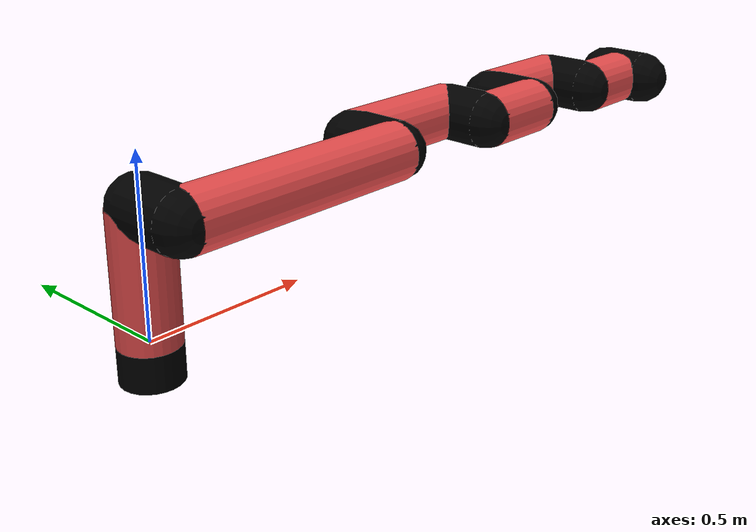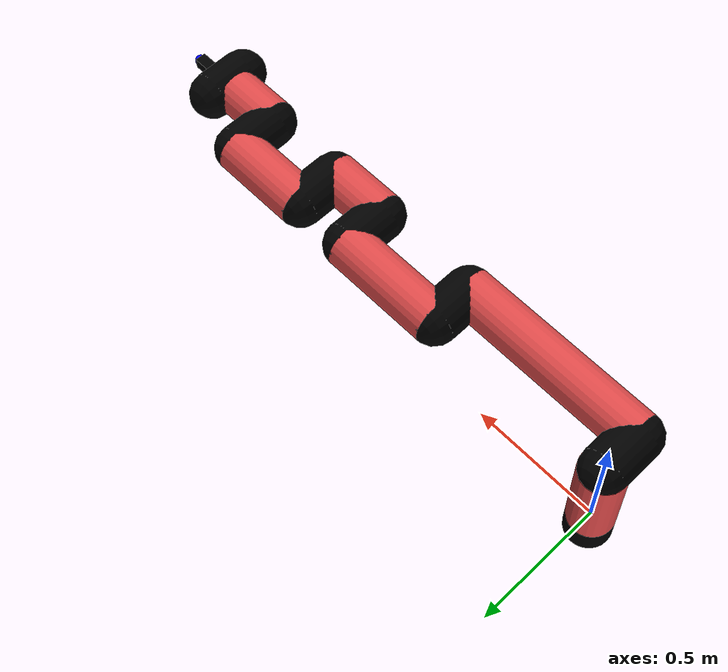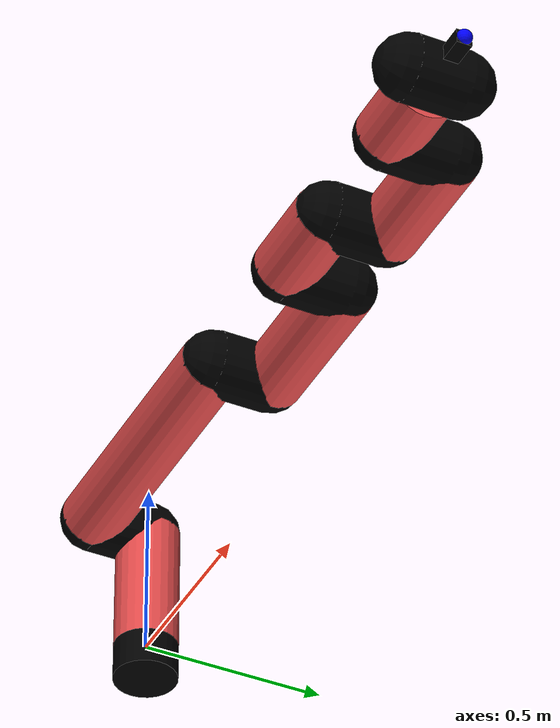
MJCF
<mujoco model="manipulator">
		<compiler angle="degree" coordinate="local" inertiafromgeom="auto" meshdir="meshes/"/>
		<option gravity="0 0 0" integrator="RK4" iterations="30" timestep="0.01"/>

		<default>
		<joint armature="1" limited="true" stiffness="10" damping="15" frictionloss="5.0"/>
		<geom conaffinity="1" condim="3" contype="1" friction=".5 .1 .1" margin="0.002"/>
		<motor ctrllimited="true"/>
		<position ctrllimited="true"/>
		</default>

		<asset>
		<texture builtin="gradient" height="100" rgb1="1.0 1.0 1.0" rgb2="1.0 1.0 1.0" type="skybox" width="100"/>
		<texture builtin="flat" height="32" name="arm_tex" rgb1="0.9 0.3 0.3" type="2d" width="32"/>
		<texture builtin="flat" height="32" name="gripper_tex" rgb1="0.0 0.0 0.0" type="cube" width="32"/>

		<material name="arm_mat" shininess="0.1" specular="0.1" texture="arm_tex"/>
		<material name="gripper_mat" shininess="1" specular="1" texture="gripper_tex"/>
		</asset>

		<worldbody>
		<light cutoff="45" diffuse=".8 .8 .8" dir="0 0.16 -1" directional="false" name="light" pos="0 -2.0 8.0" specular="0.3 0.3 0.3"/>

		<body name="base_link" pos="0 0 -0.1">
		<geom fromto="0 0 0 0 0 0.1" material="arm_mat" name="base_link" rgba="0.0 0.0 0.0 1" size="0.085" type="cylinder"/>
		</body>

		<body name="l1" pos="0 0 0">
<geom fromto="0 0 0 0 0 0.36" material="arm_mat" name="l1" rgba="0.9 0.3 0.3 1" size="0.085" type="cylinder"/>
<geom fromto="0 0 0.36 0 -0.16 0.36" material="arm_mat" name="l1_ex" rgba="0.0 0.0 0.0 1" size="0.085" type="capsule"/>
<joint axis="0 0 1" name="j1" pos="0 0 0" range="-90 90" damping="35.03" frictionloss="7.53"/>

<body name="l2" pos="0 -0.16 0.36">
<geom fromto="0 0 0 0.73 0 0" material="arm_mat" name="l2" rgba="0.9 0.3 0.3 1" size="0.085" type="cylinder"/>
<geom fromto="0.73 0 0 0.73 0.16 0" material="arm_mat" name="l2_ex" rgba="0.0 0.0 0.0 1" size="0.085" type="capsule"/>
<joint axis="0.0 1.0 0.0" name="j2" pos="0 0 0" range="-90 60" damping="39.25" frictionloss="10.49"/>

<body name="l3" pos="0.73 0.16 0">
<geom fromto="0 0 0 0.41 0 0" material="arm_mat" name="l3" rgba="0.9 0.3 0.3 1" size="0.085" type="cylinder"/>
<geom fromto="0.41 0 0 0.41 -0.16 0" material="arm_mat" name="l3_ex" rgba="0.0 0.0 0.0 1" size="0.085" type="capsule"/>
<joint axis="0.0 1.0 0.0" name="j3" pos="0 0 0" range="-30 60" damping="28.6" frictionloss="8.96"/>

<body name="l4" pos="0.41 -0.16 0">
<geom fromto="0 0 0 0.23 0 0" material="arm_mat" name="l4" rgba="0.9 0.3 0.3 1" size="0.085" type="cylinder"/>
<geom fromto="0.23 0 0 0.23 0.16 0" material="arm_mat" name="l4_ex" rgba="0.0 0.0 0.0 1" size="0.085" type="capsule"/>
<joint axis="0.0 1.0 0.0" name="j4" pos="0 0 0" range="-30 60" damping="15.73" frictionloss="11.46"/>

<body name="l5" pos="0.23 0.16 0">
<geom fromto="0 0 0 0.32 0 0" material="arm_mat" name="l5" rgba="0.9 0.3 0.3 1" size="0.085" type="cylinder"/>
<geom fromto="0.32 0 0 0.32 -0.16 0" material="arm_mat" name="l5_ex" rgba="0.0 0.0 0.0 1" size="0.085" type="capsule"/>
<joint axis="0.0 1.0 0.0" name="j5" pos="0 0 0" range="-30 60" damping="16.87" frictionloss="8.55"/>

<body name="l6" pos="0.32 -0.16 0">
<geom fromto="0 0 0 0.19 0 0" material="arm_mat" name="l6" rgba="0.9 0.3 0.3 1" size="0.085" type="cylinder"/>
<joint axis="0.0 1.0 0.0" name="j6" pos="0 0 0" range="-30 60" damping="22.77" frictionloss="13.29"/>

<body name="gripper" pos="0.19 0 0">
<geom fromto="0.05 -0.07 0 0.05 0.07 0" material="gripper_mat" name="gripper" rgba="0.0 0.0 0.0 1" size="0.085" type="capsule"/><joint axis="1 0 0" name="j7" pos="0 0 0" range="-90 90" damping="15" frictionloss="5.0"/><body name="finger" pos="0.1 0 0">
<geom fromto="0 0.0 0 0.1 0.0 0" material="gripper_mat" name="finger" rgba="0.0 0.0 0.0 1" size="0.020 0.06 0.06" type="box"/>
</body>
<site name="current" pos="0.2 0. 0.0" rgba="0. 0. 1.0 1" size="0.02" type="sphere"/>
</body>
</body>
</body>
</body>
</body>
</body>
</body>
</worldbody>
<actuator>
<motor ctrllimited="true" ctrlrange="-1.0 1.0" joint="j1" gear="45.15"/>
<motor ctrllimited="true" ctrlrange="-1.0 1.0" joint="j2" gear="83.31"/>
<motor ctrllimited="true" ctrlrange="-1.0 1.0" joint="j3" gear="67.09"/>
<motor ctrllimited="true" ctrlrange="-1.0 1.0" joint="j4" gear="73.33"/>
<motor ctrllimited="true" ctrlrange="-1.0 1.0" joint="j5" gear="51.06"/>
<motor ctrllimited="true" ctrlrange="-1.0 1.0" joint="j6" gear="71.82"/>
<motor ctrllimited="true" ctrlrange="-1.0 1.0" joint="j7" gear="80"/>
</actuator>
</mujoco>
